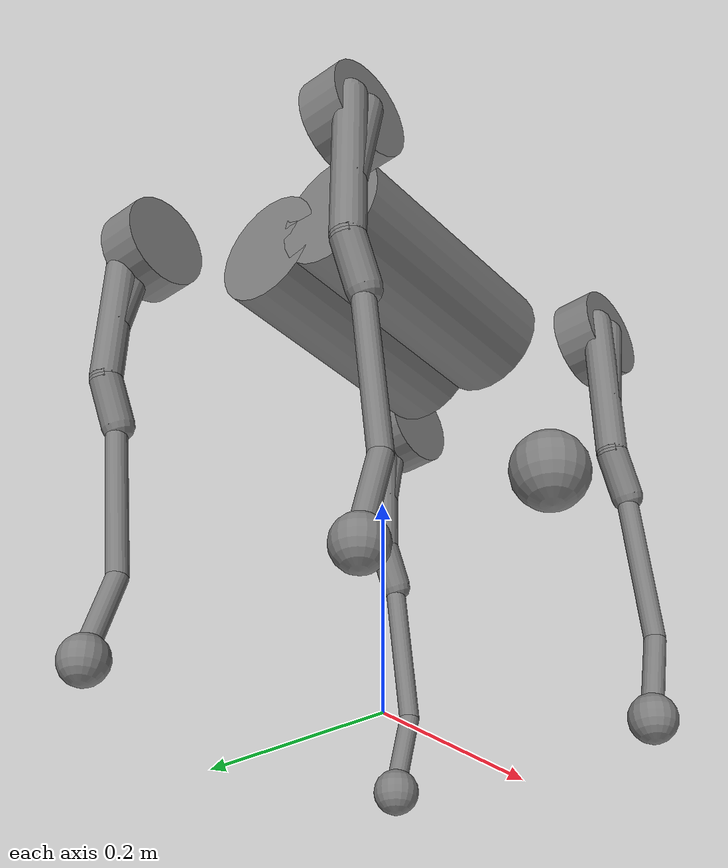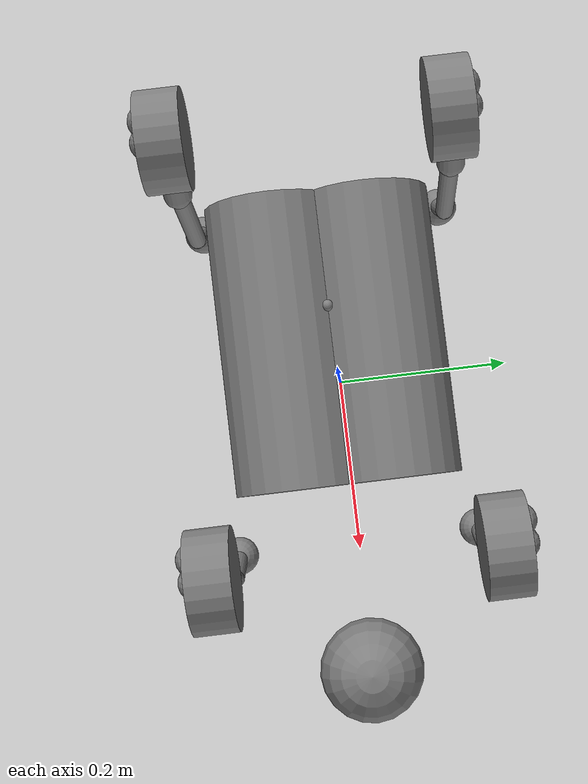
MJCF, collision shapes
<mujoco model="go2">
  <compiler angle="radian" meshdir="assets" autolimits="true"/>

  <option iterations="1" ls_iterations="5" timestep="0.004" integrator="Euler">
    <flag eulerdamp="disable"/>
  </option>

  <custom>
    <numeric data="30" name="max_contact_points"/>
    <numeric data="12" name="max_geom_pairs"/>
  </custom>

  <default>
    <default class="go2">
      <geom condim="1"/>
      <joint axis="0 1 0" damping="0.5" armature="0.01"/>
      <position forcerange="-23.7 23.7" inheritrange="2" kp="35.0"/>
      <default class="go2/abduction">
        <joint axis="1 0 0" range="-1.0472 1.0472" frictionloss="0.35"/>
      </default>
      <default class="go2/hip">
        <default class="go2/front_hip">
          <joint range="-1.5708 3.4907" frictionloss="0.35"/>
        </default>
        <default class="go2/back_hip">
          <joint range="-0.5236 4.5379" frictionloss="0.35"/>
        </default>
      </default>
      <default class="go2/knee">
        <joint range="-2.7227 -0.83776" frictionloss="1.35"/>
        <position forcerange="-45.43 45.43"/>
      </default>
      <default class="go2/foot">
        <site pos="-0.002 0 -0.213"/>
      </default>
      <default class="go2/visual">
        <geom type="mesh" contype="0" conaffinity="0" group="2"/>
      </default>
      <default class="go2/collision">
        <geom group="3" type="capsule"/>
        <default class="hip_right">
          <geom size="0.046 0.02" pos="0 -0.08 0" quat="1 1 0 0" type="cylinder"/>
        </default>
        <default class="hip_left">
          <geom size="0.046 0.02" pos="0 0.08 0" quat="1 1 0 0" type="cylinder"/>
        </default>
        <default class="thigh1">
          <geom size="0.015" fromto="-0.02 0 0 -0.02 0 -0.16"/>
        </default>
        <default class="thigh2">
          <geom size="0.015" fromto="0 0 0 -0.02 0 -0.1"/>
        </default>
        <default class="thigh3">
          <geom size="0.015" fromto="-0.02 0 -0.16 0 0 -0.2"/>
        </default>
        <default class="calf1">
          <geom size="0.01" fromto="0 0 0 0.02 0 -0.13"/>
        </default>
        <default class="calf2">
          <geom size="0.01" fromto="0.02 0 -0.13 0 0 -0.2"/>
        </default>
        <default class="go2/collision/foot">
          <geom type="sphere" size="0.022" pos="-0.002 0 -0.213" solimp="0.9 .95 0.023" condim="3"/>
        </default>
      </default>
    </default>
  </default>

  <asset>
    <material name="metal" rgba=".9 .95 .95 1"/>
    <material name="black" rgba="0 0 0 1"/>
    <material name="white" rgba="1 1 1 1"/>
    <material name="gray" rgba="0.671705 0.692426 0.774270 1"/>
    <mesh file="base_0.obj"/>
    <mesh file="base_1.obj"/>
    <mesh file="base_2.obj"/>
    <mesh file="base_3.obj"/>
    <mesh file="base_4.obj"/>
    <mesh file="hip_0.obj"/>
    <mesh file="hip_1.obj"/>
    <mesh file="thigh_0.obj"/>
    <mesh file="thigh_1.obj"/>
    <mesh file="thigh_mirror_0.obj"/>
    <mesh file="thigh_mirror_1.obj"/>
    <mesh file="calf_0.obj"/>
    <mesh file="calf_1.obj"/>
    <mesh file="calf_mirror_0.obj"/>
    <mesh file="calf_mirror_1.obj"/>
    <mesh file="foot.obj"/>
  </asset>

   <worldbody>
        <body name="base_link" pos="0 0 0.445" childclass="go2">
            <inertial pos="0.021112 0 -0.005366" quat="-0.000543471 0.713435 -0.00173769 0.700719"
                mass="6.921"
                diaginertia="0.107027 0.0980771 0.0244531"/>
            <freejoint/>
            <geom mesh="base_0" material="black" class="go2/visual"/>
            <geom mesh="base_1" material="black" class="go2/visual"/>
            <geom mesh="base_2" material="black" class="go2/visual"/>
            <geom mesh="base_3" material="white" class="go2/visual"/>
            <geom mesh="base_4" material="gray" class="go2/visual"/>
            <!-- Collision: -->
            <geom size="0.047" pos="0.293 0 -0.06" type="sphere" class="go2/collision"/>
            <geom class="go2/collision" quat="1 0 1 0" pos="0 -0.04 0" size="0.058 0.125" type="cylinder"/>
            <geom class="go2/collision" quat="1 0 1 0" pos="0 0.04 0" size="0.058 0.125" type="cylinder"/>
            <site name="imu" pos="-0.02557 0 0.04232"/>
            <body name="front_right_hip" pos="0.1934 -0.0465 0">
                <inertial pos="-0.0054 -0.00194 -0.000105" quat="0.498237 0.505462 0.499245 0.497014"
                  mass="0.678"
                  diaginertia="0.00088403 0.000596003 0.000479967"/>
                <joint name="front_right_hip_joint" class="go2/abduction"/>
                <geom mesh="hip_0" material="metal" class="go2/visual" quat="4.63268e-05 1 0 0"/>
                <geom mesh="hip_1" material="gray" class="go2/visual" quat="4.63268e-05 1 0 0"/>
                <!-- Collision: -->
                <geom name="front_right_hip_collision" class="hip_right"/>
                <!-- Collision/ -->
                <body name="front_right_thigh" pos="0 -0.0955 0">
                    <inertial pos="-0.00374 0.0223 -0.0327" quat="0.551623 -0.0200632 0.0847635 0.829533"
                        mass="1.152"
                        diaginertia="0.00594973 0.00584149 0.000878787"/>
                    <joint name="front_right_thigh_joint" class="go2/front_hip"/>
                    <geom mesh="thigh_mirror_0" material="metal" class="go2/visual"/>
                    <geom mesh="thigh_mirror_1" material="gray" class="go2/visual"/>
                    <!-- Collision: -->
                    <geom name="front_right_thigh_collision1" class="thigh1"/>
                    <geom name="front_right_thigh_collision2" class="thigh2"/>
                    <geom name="front_right_thigh_collision3" class="thigh3"/>
                    <!-- Collision/ -->
                    <body name="front_right_calf" pos="0 0 -0.213">
                        <inertial pos="0.00629595 0.000622121 -0.141417"
                          quat="0.703508 -0.00450087 0.00154099 0.710672"
                          mass="0.241352" diaginertia="0.0014901 0.00146356 5.31397e-05"/>
                        <joint name="front_right_calf_joint" class="go2/knee"/>
                        <geom mesh="calf_mirror_0" material="gray" class="go2/visual"/>
                        <geom mesh="calf_mirror_1" material="black" class="go2/visual"/>
                        <!-- Collision -->
                        <geom name="front_right_calf_collision1" class="calf1"/>
                        <geom name="front_right_calf_collision2" class="calf2"/>
                        <!-- Collision/ -->
                        <geom pos="0 0 -0.213" mesh="foot" class="go2/visual" material="black"/>
                        <geom name="front_right" class="go2/collision/foot"/>
                        <site name="front_right_foot" class="go2/foot"/>
                    </body>
                </body>
            </body>
            <body name="front_left_hip" pos="0.1934 0.0465 0">
                <inertial pos="-0.0054 0.00194 -0.000105" quat="0.497014 0.499245 0.505462 0.498237"
                mass="0.678"
                diaginertia="0.00088403 0.000596003 0.000479967"/>
                <joint name="front_left_hip_joint" class="go2/abduction"/>
                <geom mesh="hip_0" material="metal" class="go2/visual"/>
                <geom mesh="hip_1" material="gray" class="go2/visual"/>
                <!-- Collision: -->
                <geom name="front_left_hip_collision" class="hip_left"/>
                <body name="front_left_thigh" pos="0 0.0955 0">
                    <inertial pos="-0.00374 -0.0223 -0.0327" quat="0.829533 0.0847635 -0.0200632 0.551623"
                        mass="1.152"
                        diaginertia="0.00594973 0.00584149 0.000878787"/>
                    <joint name="front_left_thigh_joint" class="go2/front_hip"/>
                    <geom mesh="thigh_0" material="metal" class="go2/visual"/>
                    <geom mesh="thigh_1" material="gray" class="go2/visual"/>
                    <!-- Collision: -->
                    <geom name="front_left_thigh_collision1" class="thigh1"/>
                    <geom name="front_left_thigh_collision2" class="thigh2"/>
                    <geom name="front_left_thigh_collision3" class="thigh3"/>
                    <!-- Collision/ -->
                    <body name="front_left_calf" pos="0 0 -0.213">
                        <inertial pos="0.00629595 -0.000622121 -0.141417"
                          quat="0.710672 0.00154099 -0.00450087 0.703508"
                          mass="0.241352" diaginertia="0.0014901 0.00146356 5.31397e-05"/>
                        <joint name="front_left_calf_joint" class="go2/knee"/>
                        <geom mesh="calf_0" material="gray" class="go2/visual"/>
                        <geom mesh="calf_1" material="black" class="go2/visual"/>
                        <!-- Collision: -->
                        <geom name="front_left_calf_collision1" class="calf1"/>
                        <geom name="front_left_calf_collision2" class="calf2"/>
                        <!-- Collision/ -->
                        <geom pos="0 0 -0.213" mesh="foot" class="go2/visual" material="black"/>
                        <geom name="front_left" class="go2/collision/foot"/>
                        <site name="front_left_foot" class="go2/foot"/>
                    </body>
                </body>
            </body>
            <body name="hind_right_hip" pos="-0.1934 -0.0465 0">
                <inertial pos="0.0054 -0.00194 -0.000105" quat="0.499245 0.497014 0.498237 0.505462"
                mass="0.678"
                diaginertia="0.00088403 0.000596003 0.000479967"/>
                <joint name="hind_right_hip_joint" class="go2/abduction"/>
                <geom mesh="hip_0" material="metal" class="go2/visual"
                quat="2.14617e-09 4.63268e-05 4.63268e-05 -1"/>
                <geom mesh="hip_1" material="gray" class="go2/visual"
                    quat="2.14617e-09 4.63268e-05 4.63268e-05 -1"/>
                <!-- Collision: -->
                <geom name="hind_right_hip_collision" class="hip_right"/>
                <!-- Collision/ -->
                <body name="hind_right_thigh" pos="0 -0.0955 0">
                  <inertial pos="-0.00374 0.0223 -0.0327" quat="0.551623 -0.0200632 0.0847635 0.829533"
                      mass="1.152"
                      diaginertia="0.00594973 0.00584149 0.000878787"/>
                  <joint name="hind_right_thigh_joint" class="go2/back_hip"/>
                  <geom mesh="thigh_mirror_0" material="metal" class="go2/visual"/>
                  <geom mesh="thigh_mirror_1" material="gray" class="go2/visual"/>
                  <!-- Collision: -->
                  <geom name="hind_right_thigh_collision1" class="thigh1"/>
                  <geom name="hind_right_thigh_collision2" class="thigh2"/>
                  <geom name="hind_right_thigh_collision3" class="thigh3"/>
                  <!-- Collision/ -->
                  <body name="hind_right_calf" pos="0 0 -0.213">
                      <inertial pos="0.00629595 0.000622121 -0.141417"
                      quat="0.703508 -0.00450087 0.00154099 0.710672"
                      mass="0.241352" diaginertia="0.0014901 0.00146356 5.31397e-05"/>
                      <joint name="hind_right_calf_joint" class="go2/knee"/>
                      <geom mesh="calf_mirror_0" material="gray" class="go2/visual"/>
                      <geom mesh="calf_mirror_1" material="black" class="go2/visual"/>
                      <!-- Collision: -->
                      <geom name="hind_right_calf_collision1" class="calf1"/>
                      <geom name="hind_right_calf_collision2" class="calf2"/>
                      <!-- Collision/ -->
                      <geom pos="0 0 -0.213" mesh="foot" class="go2/visual" material="black"/>
                      <geom name="hind_right" class="go2/collision/foot"/>
                      <site name="hind_right_foot" class="go2/foot"/>
                  </body>
                </body>
            </body>
            <body name="hind_left_hip" pos="-0.1934 0.0465 0">
                <inertial pos="0.0054 0.00194 -0.000105" quat="0.505462 0.498237 0.497014 0.499245"
                mass="0.678"
                diaginertia="0.00088403 0.000596003 0.000479967"/>
                <joint name="hind_left_hip_joint" class="go2/abduction"/>
                <geom mesh="hip_0" material="metal" class="go2/visual" quat="4.63268e-05 0 1 0"/>
                <geom mesh="hip_1" material="gray" class="go2/visual" quat="4.63268e-05 0 1 0"/>
                <!-- Collision -->
                <geom name="hind_left_hip_collision" class="hip_left"/>
                <!-- Collision/ -->
                <body name="hind_left_thigh" pos="0 0.0955 0">
                    <inertial pos="-0.00374 -0.0223 -0.0327" quat="0.829533 0.0847635 -0.0200632 0.551623"
                        mass="1.152"
                        diaginertia="0.00594973 0.00584149 0.000878787"/>
                    <joint name="hind_left_thigh_joint" class="go2/back_hip"/>
                    <geom mesh="thigh_0" material="metal" class="go2/visual"/>
                    <geom mesh="thigh_1" material="gray" class="go2/visual"/>
                    <!-- Collision: -->
                    <geom name="hind_left_thigh_collision1" class="thigh1"/>
                    <geom name="hind_left_thigh_collision2" class="thigh2"/>
                    <geom name="hind_left_thigh_collision3" class="thigh3"/>
                    <!-- Collision/ -->
                    <body name="hind_left_calf" pos="0 0 -0.213">
                        <inertial pos="0.00629595 -0.000622121 -0.141417"
                        quat="0.710672 0.00154099 -0.00450087 0.703508"
                        mass="0.241352" diaginertia="0.0014901 0.00146356 5.31397e-05"/>
                        <joint name="hind_left_calf_joint" class="go2/knee"/>
                        <geom mesh="calf_0" material="gray" class="go2/visual"/>
                        <geom mesh="calf_1" material="black" class="go2/visual"/>
                        <!-- Collision: -->
                        <geom name="hind_left_calf_collision1" class="calf1"/>
                        <geom name="hind_left_calf_collision2" class="calf2"/>
                        <!-- Collision/ -->
                        <geom pos="0 0 -0.213" mesh="foot" class="go2/visual" material="black"/>
                        <geom name="hind_left" class="go2/collision/foot"/>
                        <site name="hind_left_foot" class="go2/foot"/>
                    </body>
                </body>
            </body>
        </body>
    </worldbody>

  <actuator>
    <position class="go2/abduction" name="front_right_hip" joint="front_right_hip_joint"/>
    <position class="go2/hip" name="front_right_thigh" joint="front_right_thigh_joint"/>
    <position class="go2/knee" name="front_right_calf" joint="front_right_calf_joint"/>
    <position class="go2/abduction" name="front_left_hip" joint="front_left_hip_joint"/>
    <position class="go2/hip" name="front_left_thigh" joint="front_left_thigh_joint"/>
    <position class="go2/knee" name="front_left_calf" joint="front_left_calf_joint"/>
    <position class="go2/abduction" name="hind_right_hip" joint="hind_right_hip_joint"/>
    <position class="go2/hip" name="hind_right_thigh" joint="hind_right_thigh_joint"/>
    <position class="go2/knee" name="hind_right_calf" joint="hind_right_calf_joint"/>
    <position class="go2/abduction" name="hind_left_hip" joint="hind_left_hip_joint"/>
    <position class="go2/hip" name="hind_left_thigh" joint="hind_left_thigh_joint"/>
    <position class="go2/knee" name="hind_left_calf" joint="hind_left_calf_joint"/>
  </actuator>

  <sensor>
    <!-- IMU: -->
    <gyro name="imu_gyro" site="imu"/>
    <framequat name="imu_orientation" objtype="site" objname="imu"/>
    <accelerometer name="imu_acceleration" site="imu"/>

    <!-- State Estimator: -->
    <velocimeter name="local_linvel" site="imu"/>
    <framepos name="imu_position" objtype="site" objname="imu"/>
    <framelinvel name="fr_global_linvel" objtype="site" objname="front_right_foot"/>
    <framelinvel name="fl_global_linvel" objtype="site" objname="front_left_foot"/>
    <framelinvel name="hr_global_linvel" objtype="site" objname="hind_right_foot"/>
    <framelinvel name="hl_global_linvel" objtype="site" objname="hind_left_foot"/>
    <framepos name="fr_pos" objtype="site" objname="front_right_foot" reftype="site" refname="imu"/>
    <framepos name="fl_pos" objtype="site" objname="front_left_foot" reftype="site" refname="imu"/>
    <framepos name="hr_pos" objtype="site" objname="hind_right_foot" reftype="site" refname="imu"/>
    <framepos name="hl_pos" objtype="site" objname="hind_left_foot" reftype="site" refname="imu"/>

    <!-- Globals: -->
    <framezaxis name="upvector" objtype="site" objname="imu"/>
    <framexaxis name="forwardvector" objtype="site" objname="imu"/>
    <framelinvel name="global_linvel" objtype="site" objname="imu"/>
    <frameangvel name="global_angvel" objtype="site" objname="imu"/>
  </sensor>

</mujoco>
